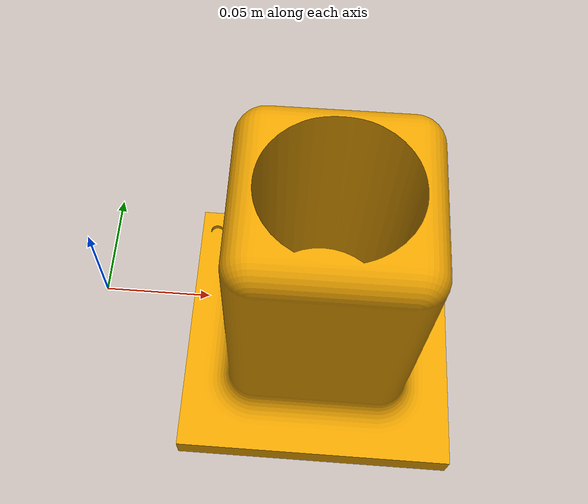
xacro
<?xml version="1.0"?>
<robot name ="hole" xmlns:xacro="http://www.ros.org/wiki/xacro">
    <link name="hole_body">
        <inertial>
            <origin rpy="0 0 0" xyz="100.61e-3 -39.99e-3 89.33e-3"/>
            <mass value="0.1"/>
            <inertia ixx="602678.94e-9" ixy="79.46e-9" ixz="-57.65e-9" iyy="602668.59e-9" iyz="54.01e-9" izz="409802.32e-9"/>
        </inertial>
        <visual>
            <origin rpy="0 0 0" xyz="0 0 0"/>
            <geometry>
                <mesh filename="package://cai_env/meshes/Hole.STL" scale="1 1 1" />
            </geometry>
        </visual>
        <collision>
            <origin rpy="0 0 0" xyz="0 0 0"/>
            <geometry>
                <mesh filename="package://cai_env/meshes/Hole.STL" scale="1 1 1" />
            </geometry>
        </collision>
        </link>
</robot>
